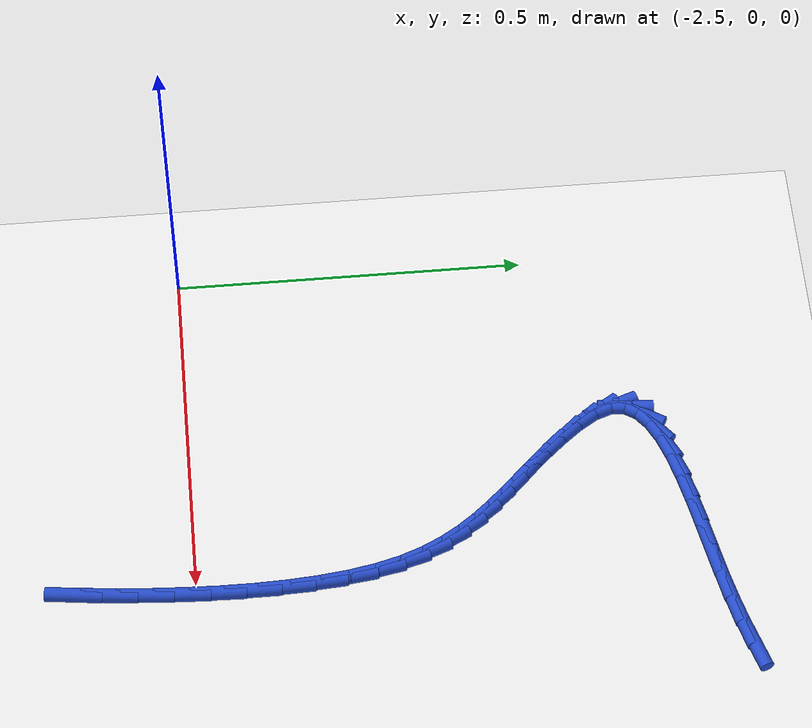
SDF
<sdf version="1.6">
 <world name="default">
  <model name="ground_plane">
   <static>1</static>
   <link name="link">
    <collision name="collision">
     <geometry><plane><normal>0 0 1</normal><size>100 100</size></plane></geometry>
     <surface><friction><ode><mu>100</mu><mu2>50</mu2></ode></friction></surface>
    </collision>
    <visual name="visual">
     <cast_shadows>0</cast_shadows>
     <geometry><plane><normal>0 0 1</normal><size>100 100</size></plane></geometry>
     <material>
      <script><uri>file://media/materials/scripts/gazebo.material</uri><name>Gazebo/WhiteGlow</name></script>
     </material>
    </visual>
   </link>
  </model>
  <model name="line">
   <link name="link_100">
    <pose>-1.8397557886222233 0.7531254798001326 0.01 0 1.57 0.29893100838939557</pose>
    <collision name="collision">
     <geometry><cylinder><radius>0.01</radius><length>0.08</length></cylinder></geometry>
    </collision>
    <visual name="visual">
     <material>
      <script><name>Gazebo/Blue</name><uri>file://media/materials/scripts/gazebo.material</uri></script>
     </material>
     <geometry><cylinder><radius>0.01</radius><length>0.08</length></cylinder></geometry>
    </visual>
   </link>
   <link name="link_101">
    <pose>-1.8745669350528518 0.7423978905339018 0.01 0 1.57 0.25853873628662183</pose>
    <collision name="collision">
     <geometry><cylinder><radius>0.01</radius><length>0.08</length></cylinder></geometry>
    </collision>
    <visual name="visual">
     <material>
      <script><name>Gazebo/Blue</name><uri>file://media/materials/scripts/gazebo.material</uri></script>
     </material>
     <geometry><cylinder><radius>0.01</radius><length>0.08</length></cylinder></geometry>
    </visual>
   </link>
   <link name="link_102">
    <pose>-1.911525519580446 0.7326239165911491 0.01 0 1.57 0.22483075040479214</pose>
    <collision name="collision">
     <geometry><cylinder><radius>0.01</radius><length>0.08</length></cylinder></geometry>
    </collision>
    <visual name="visual">
     <material>
      <script><name>Gazebo/Blue</name><uri>file://media/materials/scripts/gazebo.material</uri></script>
     </material>
     <geometry><cylinder><radius>0.01</radius><length>0.08</length></cylinder></geometry>
    </visual>
   </link>
   <link name="link_103">
    <pose>-1.950602851935562 0.7236870376928374 0.01 0 1.57 0.20137429749580496</pose>
    <collision name="collision">
     <geometry><cylinder><radius>0.01</radius><length>0.08</length></cylinder></geometry>
    </collision>
    <visual name="visual">
     <material>
      <script><name>Gazebo/Blue</name><uri>file://media/materials/scripts/gazebo.material</uri></script>
     </material>
     <geometry><cylinder><radius>0.01</radius><length>0.08</length></cylinder></geometry>
    </visual>
   </link>
   <link name="link_104">
    <pose>-1.9913478358668344 0.7153693076015942 0.01 0 1.57 0.1934794579846722</pose>
    <collision name="collision">
     <geometry><cylinder><radius>0.01</radius><length>0.08</length></cylinder></geometry>
    </collision>
    <visual name="visual">
     <material>
      <script><name>Gazebo/Blue</name><uri>file://media/materials/scripts/gazebo.material</uri></script>
     </material>
     <geometry><cylinder><radius>0.01</radius><length>0.08</length></cylinder></geometry>
    </visual>
   </link>
   <link name="link_105">
    <pose>-2.0326098732124094 0.7072848192682542 0.01 0 1.57 0.2007211011636959</pose>
    <collision name="collision">
     <geometry><cylinder><radius>0.01</radius><length>0.08</length></cylinder></geometry>
    </collision>
    <visual name="visual">
     <material>
      <script><name>Gazebo/Blue</name><uri>file://media/materials/scripts/gazebo.material</uri></script>
     </material>
     <geometry><cylinder><radius>0.01</radius><length>0.08</length></cylinder></geometry>
    </visual>
   </link>
   <link name="link_106">
    <pose>-2.073172638289756 0.6990318834884297 0.01 0 1.57 0.22445133653969696</pose>
    <collision name="collision">
     <geometry><cylinder><radius>0.01</radius><length>0.08</length></cylinder></geometry>
    </collision>
    <visual name="visual">
     <material>
      <script><name>Gazebo/Blue</name><uri>file://media/materials/scripts/gazebo.material</uri></script>
     </material>
     <geometry><cylinder><radius>0.01</radius><length>0.08</length></cylinder></geometry>
    </visual>
   </link>
   <link name="link_107">
    <pose>-2.111819805416342 0.6902088110577328 0.01 0 1.57 0.2691044254078841</pose>
    <collision name="collision">
     <geometry><cylinder><radius>0.01</radius><length>0.08</length></cylinder></geometry>
    </collision>
    <visual name="visual">
     <material>
      <script><name>Gazebo/Blue</name><uri>file://media/materials/scripts/gazebo.material</uri></script>
     </material>
     <geometry><cylinder><radius>0.01</radius><length>0.08</length></cylinder></geometry>
    </visual>
   </link>
   <link name="link_108">
    <pose>-2.1473350489096363 0.6804139127717761 0.01 0 1.57 0.34408618547369274</pose>
    <collision name="collision">
     <geometry><cylinder><radius>0.01</radius><length>0.08</length></cylinder></geometry>
    </collision>
    <visual name="visual">
     <material>
      <script><name>Gazebo/Blue</name><uri>file://media/materials/scripts/gazebo.material</uri></script>
     </material>
     <geometry><cylinder><radius>0.01</radius><length>0.08</length></cylinder></geometry>
    </visual>
   </link>
   <link name="link_109">
    <pose>-2.178502043087107 0.6692454994261712 0.01 0 1.57 0.4680875314330333</pose>
    <collision name="collision">
     <geometry><cylinder><radius>0.01</radius><length>0.08</length></cylinder></geometry>
    </collision>
    <visual name="visual">
     <material>
      <script><name>Gazebo/Blue</name><uri>file://media/materials/scripts/gazebo.material</uri></script>
     </material>
     <geometry><cylinder><radius>0.01</radius><length>0.08</length></cylinder></geometry>
    </visual>
   </link>
   <link name="link_110">
    <pose>-2.2041044622662236 0.6563018818165306 0.01 0 1.57 0.6767881748958159</pose>
    <collision name="collision">
     <geometry><cylinder><radius>0.01</radius><length>0.08</length></cylinder></geometry>
    </collision>
    <visual name="visual">
     <material>
      <script><name>Gazebo/Blue</name><uri>file://media/materials/scripts/gazebo.material</uri></script>
     </material>
     <geometry><cylinder><radius>0.01</radius><length>0.08</length></cylinder></geometry>
    </visual>
   </link>
   <link name="link_111">
    <pose>-2.222925980764454 0.6411813707384664 0.01 0 1.57 1.0219105211492607</pose>
    <collision name="collision">
     <geometry><cylinder><radius>0.01</radius><length>0.08</length></cylinder></geometry>
    </collision>
    <visual name="visual">
     <material>
      <script><name>Gazebo/Blue</name><uri>file://media/materials/scripts/gazebo.material</uri></script>
     </material>
     <geometry><cylinder><radius>0.01</radius><length>0.08</length></cylinder></geometry>
    </visual>
   </link>
   <link name="link_112">
    <pose>-2.2337502728992664 0.623482276987591 0.01 0 1.57 1.4930621035939233</pose>
    <collision name="collision">
     <geometry><cylinder><radius>0.01</radius><length>0.08</length></cylinder></geometry>
    </collision>
    <visual name="visual">
     <material>
      <script><name>Gazebo/Blue</name><uri>file://media/materials/scripts/gazebo.material</uri></script>
     </material>
     <geometry><cylinder><radius>0.01</radius><length>0.08</length></cylinder></geometry>
    </visual>
   </link>
   <link name="link_113">
    <pose>-2.23536101298813 0.6028029113595161 0.01 0 1.57 -1.2271324664228416</pose>
    <collision name="collision">
     <geometry><cylinder><radius>0.01</radius><length>0.08</length></cylinder></geometry>
    </collision>
    <visual name="visual">
     <material>
      <script><name>Gazebo/Blue</name><uri>file://media/materials/scripts/gazebo.material</uri></script>
     </material>
     <geometry><cylinder><radius>0.01</radius><length>0.08</length></cylinder></geometry>
    </visual>
   </link>
   <link name="link_114">
    <pose>-2.2267954327257007 0.5788676545324977 0.01 0 1.57 -1.000119410355248</pose>
    <collision name="collision">
     <geometry><cylinder><radius>0.01</radius><length>0.08</length></cylinder></geometry>
    </collision>
    <visual name="visual">
     <material>
      <script><name>Gazebo/Blue</name><uri>file://media/materials/scripts/gazebo.material</uri></script>
     </material>
     <geometry><cylinder><radius>0.01</radius><length>0.08</length></cylinder></geometry>
    </visual>
   </link>
   <link name="link_115">
    <pose>-2.2101357009777187 0.5529148438129612 0.01 0 1.57 -0.8942840255610702</pose>
    <collision name="collision">
     <geometry><cylinder><radius>0.01</radius><length>0.08</length></cylinder></geometry>
    </collision>
    <visual name="visual">
     <material>
      <script><name>Gazebo/Blue</name><uri>file://media/materials/scripts/gazebo.material</uri></script>
     </material>
     <geometry><cylinder><radius>0.01</radius><length>0.08</length></cylinder></geometry>
    </visual>
   </link>
   <link name="link_116">
    <pose>-2.1894749838056726 0.5271825214695923 0.01 0 1.57 -0.8405401102365121</pose>
    <collision name="collision">
     <geometry><cylinder><radius>0.01</radius><length>0.08</length></cylinder></geometry>
    </collision>
    <visual name="visual">
     <material>
      <script><name>Gazebo/Blue</name><uri>file://media/materials/scripts/gazebo.material</uri></script>
     </material>
     <geometry><cylinder><radius>0.01</radius><length>0.08</length></cylinder></geometry>
    </visual>
   </link>
   <link name="link_117">
    <pose>-2.1680801026508023 0.5032877462205999 0.01 0 1.57 -0.806444587760052</pose>
    <collision name="collision">
     <geometry><cylinder><radius>0.01</radius><length>0.08</length></cylinder></geometry>
    </collision>
    <visual name="visual">
     <material>
      <script><name>Gazebo/Blue</name><uri>file://media/materials/scripts/gazebo.material</uri></script>
     </material>
     <geometry><cylinder><radius>0.01</radius><length>0.08</length></cylinder></geometry>
    </visual>
   </link>
   <link name="link_118">
    <pose>-2.1466793172180587 0.4809666353128605 0.01 0 1.57 -0.7903970751456101</pose>
    <collision name="collision">
     <geometry><cylinder><radius>0.01</radius><length>0.08</length></cylinder></geometry>
    </collision>
    <visual name="visual">
     <material>
      <script><name>Gazebo/Blue</name><uri>file://media/materials/scripts/gazebo.material</uri></script>
     </material>
     <geometry><cylinder><radius>0.01</radius><length>0.08</length></cylinder></geometry>
    </visual>
   </link>
   <link name="link_119">
    <pose>-2.125535932129734 0.45961079859570203 0.01 0 1.57 -0.7944382293502048</pose>
    <collision name="collision">
     <geometry><cylinder><radius>0.01</radius><length>0.08</length></cylinder></geometry>
    </collision>
    <visual name="visual">
     <material>
      <script><name>Gazebo/Blue</name><uri>file://media/materials/scripts/gazebo.material</uri></script>
     </material>
     <geometry><cylinder><radius>0.01</radius><length>0.08</length></cylinder></geometry>
    </visual>
   </link>
   <link name="link_120">
    <pose>-2.1049132520081177 0.4386118459184521 0.01 0 1.57 -0.8197438190149986</pose>
    <collision name="collision">
     <geometry><cylinder><radius>0.01</radius><length>0.08</length></cylinder></geometry>
    </collision>
    <visual name="visual">
     <material>
      <script><name>Gazebo/Blue</name><uri>file://media/materials/scripts/gazebo.material</uri></script>
     </material>
     <geometry><cylinder><radius>0.01</radius><length>0.08</length></cylinder></geometry>
    </visual>
   </link>
   <link name="link_121">
    <pose>-2.0850745814755007 0.4173613871304383 0.01 0 1.57 -0.8663664767740622</pose>
    <collision name="collision">
     <geometry><cylinder><radius>0.01</radius><length>0.08</length></cylinder></geometry>
    </collision>
    <visual name="visual">
     <material>
      <script><name>Gazebo/Blue</name><uri>file://media/materials/scripts/gazebo.material</uri></script>
     </material>
     <geometry><cylinder><radius>0.01</radius><length>0.08</length></cylinder></geometry>
    </visual>
   </link>
   <link name="link_122">
    <pose>-2.0662832251541734 0.39525103208098844 0.01 0 1.57 -0.9328347653208423</pose>
    <collision name="collision">
     <geometry><cylinder><radius>0.01</radius><length>0.08</length></cylinder></geometry>
    </collision>
    <visual name="visual">
     <material>
      <script><name>Gazebo/Blue</name><uri>file://media/materials/scripts/gazebo.material</uri></script>
     </material>
     <geometry><cylinder><radius>0.01</radius><length>0.08</length></cylinder></geometry>
    </visual>
   </link>
   <link name="link_123">
    <pose>-2.0488024876664253 0.3716723906194299 0.01 0 1.57 -1.0157860473013238</pose>
    <collision name="collision">
     <geometry><cylinder><radius>0.01</radius><length>0.08</length></cylinder></geometry>
    </collision>
    <visual name="visual">
     <material>
      <script><name>Gazebo/Blue</name><uri>file://media/materials/scripts/gazebo.material</uri></script>
     </material>
     <geometry><cylinder><radius>0.01</radius><length>0.08</length></cylinder></geometry>
    </visual>
   </link>
   <link name="link_124">
    <pose>-2.0328956736345485 0.34601707259509074 0.01 0 1.57 -1.1099926934413629</pose>
    <collision name="collision">
     <geometry><cylinder><radius>0.01</radius><length>0.08</length></cylinder></geometry>
    </collision>
    <visual name="visual">
     <material>
      <script><name>Gazebo/Blue</name><uri>file://media/materials/scripts/gazebo.material</uri></script>
     </material>
     <geometry><cylinder><radius>0.01</radius><length>0.08</length></cylinder></geometry>
    </visual>
   </link>
   <link name="link_125">
    <pose>-2.018826087680832 0.31767668785729797 0.01 0 1.57 -1.2090811449091712</pose>
    <collision name="collision">
     <geometry><cylinder><radius>0.01</radius><length>0.08</length></cylinder></geometry>
    </collision>
    <visual name="visual">
     <material>
      <script><name>Gazebo/Blue</name><uri>file://media/materials/scripts/gazebo.material</uri></script>
     </material>
     <geometry><cylinder><radius>0.01</radius><length>0.08</length></cylinder></geometry>
    </visual>
   </link>
   <link name="link_126">
    <pose>-2.006857034427568 0.2860428462553796 0.01 0 1.57 -1.3052744673111207</pose>
    <collision name="collision">
     <geometry><cylinder><radius>0.01</radius><length>0.08</length></cylinder></geometry>
    </collision>
    <visual name="visual">
     <material>
      <script><name>Gazebo/Blue</name><uri>file://media/materials/scripts/gazebo.material</uri></script>
     </material>
     <geometry><cylinder><radius>0.01</radius><length>0.08</length></cylinder></geometry>
    </visual>
   </link>
   <link name="link_127">
    <pose>-1.9972178022576976 0.25059705526214143 0.01 0 1.57 -1.3848656135693516</pose>
    <collision name="collision">
     <geometry><cylinder><radius>0.01</radius><length>0.08</length></cylinder></geometry>
    </collision>
    <visual name="visual">
     <material>
      <script><name>Gazebo/Blue</name><uri>file://media/materials/scripts/gazebo.material</uri></script>
     </material>
     <geometry><cylinder><radius>0.01</radius><length>0.08</length></cylinder></geometry>
    </visual>
   </link>
   <link name="link_128">
    <pose>-1.989869217756549 0.21153030929141267 0.01 0 1.57 -1.4475057179830886</pose>
    <collision name="collision">
     <geometry><cylinder><radius>0.01</radius><length>0.08</length></cylinder></geometry>
    </collision>
    <visual name="visual">
     <material>
      <script><name>Gazebo/Blue</name><uri>file://media/materials/scripts/gazebo.material</uri></script>
     </material>
     <geometry><cylinder><radius>0.01</radius><length>0.08</length></cylinder></geometry>
    </visual>
   </link>
   <link name="link_129">
    <pose>-1.9846447662118614 0.16937013848946547 0.01 0 1.57 -1.4978645160533972</pose>
    <collision name="collision">
     <geometry><cylinder><radius>0.01</radius><length>0.08</length></cylinder></geometry>
    </collision>
    <visual name="visual">
     <material>
      <script><name>Gazebo/Blue</name><uri>file://media/materials/scripts/gazebo.material</uri></script>
     </material>
     <geometry><cylinder><radius>0.01</radius><length>0.08</length></cylinder></geometry>
    </visual>
   </link>
   <link name="link_130">
    <pose>-1.981377165598188 0.12464610084672158 0.01 0 1.57 -1.5391968406198913</pose>
    <collision name="collision">
     <geometry><cylinder><radius>0.01</radius><length>0.08</length></cylinder></geometry>
    </collision>
    <visual name="visual">
     <material>
      <script><name>Gazebo/Blue</name><uri>file://media/materials/scripts/gazebo.material</uri></script>
     </material>
     <geometry><cylinder><radius>0.01</radius><length>0.08</length></cylinder></geometry>
    </visual>
   </link>
   <link name="link_131">
    <pose>-1.979899133890079 0.07788775435360282 0.01 0 1.57 1.5678074025371593</pose>
    <collision name="collision">
     <geometry><cylinder><radius>0.01</radius><length>0.08</length></cylinder></geometry>
    </collision>
    <visual name="visual">
     <material>
      <script><name>Gazebo/Blue</name><uri>file://media/materials/scripts/gazebo.material</uri></script>
     </material>
     <geometry><cylinder><radius>0.01</radius><length>0.08</length></cylinder></geometry>
    </visual>
   </link>
   <link name="link_132">
    <pose>-1.9800433890620874 0.029624657000530845 0.01 0 1.57 1.5383277338584267</pose>
    <collision name="collision">
     <geometry><cylinder><radius>0.01</radius><length>0.08</length></cylinder></geometry>
    </collision>
    <visual name="visual">
     <material>
      <script><name>Gazebo/Blue</name><uri>file://media/materials/scripts/gazebo.material</uri></script>
     </material>
     <geometry><cylinder><radius>0.01</radius><length>0.08</length></cylinder></geometry>
    </visual>
   </link>
   <link name="link_133">
    <pose>-1.9816426490887658 -0.01961363322207159 0.01 0 1.57 1.512754612230722</pose>
    <collision name="collision">
     <geometry><cylinder><radius>0.01</radius><length>0.08</length></cylinder></geometry>
    </collision>
    <visual name="visual">
     <material>
      <script><name>Gazebo/Blue</name><uri>file://media/materials/scripts/gazebo.material</uri></script>
     </material>
     <geometry><cylinder><radius>0.01</radius><length>0.08</length></cylinder></geometry>
    </visual>
   </link>
   <link name="link_134">
    <pose>-1.9845296319446641 -0.06929755832378454 0.01 0 1.57 1.4901766170910455</pose>
    <collision name="collision">
     <geometry><cylinder><radius>0.01</radius><length>0.08</length></cylinder></geometry>
    </collision>
    <visual name="visual">
     <material>
      <script><name>Gazebo/Blue</name><uri>file://media/materials/scripts/gazebo.material</uri></script>
     </material>
     <geometry><cylinder><radius>0.01</radius><length>0.08</length></cylinder></geometry>
    </visual>
   </link>
   <link name="link_135">
    <pose>-1.9885370556043365 -0.11889756031418523 0.01 0 1.57 1.4698761163235092</pose>
    <collision name="collision">
     <geometry><cylinder><radius>0.01</radius><length>0.08</length></cylinder></geometry>
    </collision>
    <visual name="visual">
     <material>
      <script><name>Gazebo/Blue</name><uri>file://media/materials/scripts/gazebo.material</uri></script>
     </material>
     <geometry><cylinder><radius>0.01</radius><length>0.08</length></cylinder></geometry>
    </visual>
   </link>
   <link name="link_136">
    <pose>-1.9934976380423344 -0.16788408120285211 0.01 0 1.57 1.4512594047917995</pose>
    <collision name="collision">
     <geometry><cylinder><radius>0.01</radius><length>0.08</length></cylinder></geometry>
    </collision>
    <visual name="visual">
     <material>
      <script><name>Gazebo/Blue</name><uri>file://media/materials/scripts/gazebo.material</uri></script>
     </material>
     <geometry><cylinder><radius>0.01</radius><length>0.08</length></cylinder></geometry>
    </visual>
   </link>
  </model>
 </world>
</sdf>
